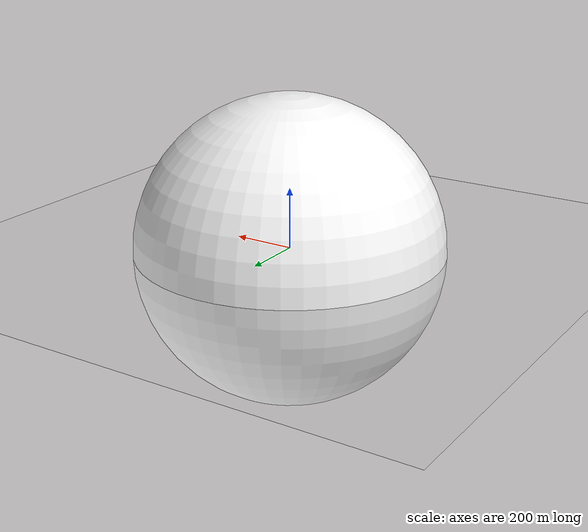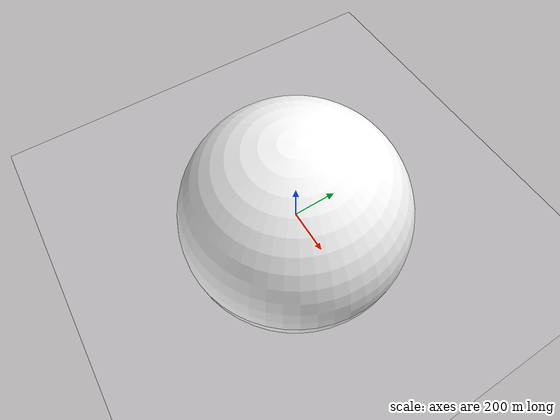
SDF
<?xml version="1.0"?>
<sdf version="1.8">
  <world name="laberinto_world">

    <plugin filename="libignition-gazebo-physics-system.so"
      name="ignition::gazebo::systems::Physics"></plugin>
    <plugin filename="libignition-gazebo-scene-broadcaster-system.so"
      name="ignition::gazebo::systems::SceneBroadcaster"></plugin>
    <plugin filename="libignition-gazebo-user-commands-system.so"
      name="ignition::gazebo::systems::UserCommands"></plugin>
    <plugin filename="libignition-gazebo-sensors-system.so"
      name="ignition::gazebo::systems::Sensors">
      <render_engine>ogre2</render_engine>
    </plugin>
    <!-- IMU system: needed by the JetAuto MPU-6050 sensor (jetauto_sim). Harmless if no IMU. -->
    <plugin filename="libignition-gazebo-imu-system.so"
      name="ignition::gazebo::systems::Imu"></plugin>

    <scene>
      <ambient>0.55 0.55 0.6 1.0</ambient>
      <background>0.85 0.87 0.9 1.0</background>
      <grid>true</grid>
    </scene>

    <gui fullscreen="0">
      <plugin filename="GzScene3D" name="3D View">
        <ignition-gui>
          <title>3D View</title>
          <property type="bool" key="showTitleBar">false</property>
          <property type="string" key="state">docked</property>
        </ignition-gui>
        <engine>ogre2</engine>
        <scene>scene</scene>
        <ambient_light>0.55 0.55 0.6</ambient_light>
        <background_color>0.85 0.87 0.9</background_color>
        <camera_pose>-6 0 5 0 0.5 0</camera_pose>
        <horizontal_fov>0.6912</horizontal_fov>
      </plugin>

      <!-- Plugin para ver el Real Time Factor y Tiempo de Simulación -->
      <plugin filename="WorldStats" name="World stats">
        <ignition-gui>
          <title>World stats</title>
          <property type="bool" key="showTitleBar">false</property>
          <property type="bool" key="resizable">false</property>
          <property type="double" key="height">110</property>
          <property type="double" key="width">290</property>
          <property type="double" key="z">1</property>
          <property type="string" key="state">floating</property>
          <anchors target="3D View">
            <line own="right" target="right"/>
            <line own="bottom" target="bottom"/>
          </anchors>
        </ignition-gui>
        <sim_time>true</sim_time>
        <real_time>true</real_time>
        <real_time_factor>true</real_time_factor>
        <iterations>true</iterations>
      </plugin>

      <!-- Plugin para los botones de Play / Pause / Step -->
      <plugin filename="WorldControl" name="World control">
        <ignition-gui>
          <title>World control</title>
          <property type="bool" key="showTitleBar">false</property>
          <property type="bool" key="resizable">false</property>
          <property type="double" key="height">72</property>
          <property type="double" key="width">121</property>
          <property type="double" key="z">1</property>
          <property type="string" key="state">floating</property>
          <anchors target="3D View">
            <line own="left" target="left"/>
            <line own="bottom" target="bottom"/>
          </anchors>
        </ignition-gui>
        <play_pause>true</play_pause>
        <step>true</step>
        <start_paused>false</start_paused>
      </plugin>
    </gui>

    <physics name="3ms" type="ignored">
      <max_step_size>0.003</max_step_size>
      <real_time_factor>1.0</real_time_factor>
    </physics>

    <light type="directional" name="sun">
      <cast_shadows>true</cast_shadows>
      <pose>0 0 10 0 0 0</pose>
      <diffuse>0.45 0.45 0.45 1</diffuse>
      <specular>0.05 0.05 0.05 1</specular>
      <direction>-0.5 0.1 -0.9</direction>
    </light>

    <light type="directional" name="fill_opposite">
      <cast_shadows>false</cast_shadows>
      <pose>0 0 10 0 0 0</pose>
      <diffuse>0.25 0.25 0.28 1</diffuse>
      <specular>0.0 0.0 0.0 1</specular>
      <direction>0.5 -0.1 -0.7</direction>
    </light>

    <light type="directional" name="fill_side">
      <cast_shadows>false</cast_shadows>
      <pose>0 0 10 0 0 0</pose>
      <diffuse>0.2 0.22 0.25 1</diffuse>
      <specular>0.0 0.0 0.0 1</specular>
      <direction>0.1 0.9 -0.4</direction>
    </light>

    <model name="ground_plane">
      <static>true</static>
      <link name="link">
        <collision name="collision">
          <geometry>
            <plane>
              <normal>0 0 1</normal>
              <size>100 100</size>
            </plane>
          </geometry>
        </collision>
        <visual name="visual">
          <geometry>
            <plane>
              <normal>0 0 1</normal>
              <size>100 100</size>
            </plane>
          </geometry>
          <material>
            <ambient>0.8 0.8 0.8 1</ambient>
            <diffuse>0.8 0.8 0.8 1</diffuse>
          </material>
        </visual>
      </link>
    </model>

    <!-- dronCamara desactivado: colisionaba con uav/camera/image del tello_con_espejo -->

    <include>
      <name>aruco_2</name>
      <uri>file://marcador_aruco/marcador_aruco2.sdf</uri>
      <pose>0.0 -1.4 0.06 0 0 -1.5708</pose>
    </include>

    <include>
      <name>cubo_meta</name>
      <uri>file://cubo_aruco</uri>
      <pose>1.3 1.3 0.06 0 0 0</pose>
    </include>

    <include>
      <uri>model://skydome</uri>
      <pose>0 0 0 0 0 0</pose>
    </include>

    <include>
      <uri>model://laberinto_real</uri>
      <pose>-2.294 2.294 0 1.5708 0 0</pose>
    </include>

  </world>
</sdf>

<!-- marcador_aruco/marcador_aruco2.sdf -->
<sdf version="1.8">
  <model name="marcador_aruco">
    <static>true</static>
    <link name="link">
      <visual name="visual">
        <geometry>
          <plane>
            <normal>0 0 1</normal>
            <size>0.18 0.18</size>
          </plane>
        </geometry>
        <material>
          <diffuse>1 1 1 1</diffuse>
          <specular>0.1 0.1 0.1 1</specular>
          <pbr>
            <metal>
              <albedo_map>materials/textures/aruco2.png</albedo_map>
            </metal>
          </pbr>
        </material>
      </visual>
      <collision name="collision">
        <geometry>
          <plane>
            <normal>0 0 1</normal>
            <size>0.18 0.18</size>
          </plane>
        </geometry>
      </collision>
    </link>
  </model>
</sdf>

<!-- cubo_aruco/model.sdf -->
<sdf version="1.8">
  <model name="cubo_aruco">
    <static>true</static>
    <link name="link">
      <pose>0 0 0.1 0 0 0</pose>

      <!-- Cara superior (+Z) -->
      <visual name="face_top">
        <pose>0 0 0.075 0 0 0</pose>
        <geometry><box><size>0.15 0.15 0.001</size></box></geometry>
        <material>
          <diffuse>1 1 1 1</diffuse>
          <pbr><metal><albedo_map>../marcador_aruco/materials/textures/aruco0.png</albedo_map></metal></pbr>
        </material>
      </visual>

      <!-- Cara inferior (-Z) -->
      <visual name="face_bottom">
        <pose>0 0 -0.075 0 0 0</pose>
        <geometry><box><size>0.15 0.15 0.001</size></box></geometry>
        <material>
          <diffuse>1 1 1 1</diffuse>
          <pbr><metal><albedo_map>../marcador_aruco/materials/textures/aruco1.png</albedo_map></metal></pbr>
        </material>
      </visual>

      <!-- Cara frontal (+Y) -->
      <visual name="face_front">
        <pose>0 0.075 0 -1.5708 0 0</pose>
        <geometry><box><size>0.15 0.15 0.001</size></box></geometry>
        <material>
          <diffuse>1 1 1 1</diffuse>
          <pbr><metal><albedo_map>../marcador_aruco/materials/textures/aruco1.png</albedo_map></metal></pbr>
        </material>
      </visual>

      <!-- Cara trasera (-Y) -->
      <visual name="face_back">
        <pose>0 -0.075 0 1.5708 0 0</pose>
        <geometry><box><size>0.15 0.15 0.001</size></box></geometry>
        <material>
          <diffuse>1 1 1 1</diffuse>
          <pbr><metal><albedo_map>../marcador_aruco/materials/textures/aruco1.png</albedo_map></metal></pbr>
        </material>
      </visual>

      <!-- Cara derecha (+X) -->
      <visual name="face_right">
        <pose>0.075 0 0 0 1.5708 0</pose>
        <geometry><box><size>0.15 0.15 0.001</size></box></geometry>
        <material>
          <diffuse>1 1 1 1</diffuse>
          <pbr><metal><albedo_map>../marcador_aruco/materials/textures/aruco1.png</albedo_map></metal></pbr>
        </material>
      </visual>

      <!-- Cara izquierda (-X) -->
      <visual name="face_left">
        <pose>-0.075 0 0 0 -1.5708 0</pose>
        <geometry><box><size>0.15 0.15 0.001</size></box></geometry>
        <material>
          <diffuse>1 1 1 1</diffuse>
          <pbr><metal><albedo_map>../marcador_aruco/materials/textures/aruco1.png</albedo_map></metal></pbr>
        </material>
      </visual>

      <collision name="collision">
        <geometry>
          <box>
            <size>0.15 0.15 0.15</size>
          </box>
        </geometry>
      </collision>
    </link>
  </model>
</sdf>

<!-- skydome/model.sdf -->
<sdf version="1.6">
  <model name="skydome">
    <static>true</static>
    <link name="link">
      <visual name="visual">
        <cast_shadows>false</cast_shadows>
        <geometry>
          <mesh>
            <uri>model://skydome/meshes/skydome.obj</uri>
          </mesh>
        </geometry>
        <material>
          <ambient>1 1 1 1</ambient>
          <diffuse>1 1 1 1</diffuse>
          <specular>0 0 0 1</specular>
          <pbr>
            <metal>
              <albedo_map>model://skydome/meshes/hangar_equirect.png</albedo_map>
              <emissive_map>model://skydome/meshes/hangar_equirect.png</emissive_map>
              <metalness>0.0</metalness>
              <roughness>1.0</roughness>
            </metal>
          </pbr>
        </material>
      </visual>
    </link>
  </model>
</sdf>

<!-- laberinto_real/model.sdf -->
<sdf version="1.6">
  <model name="laberinto_real">
    <static>true</static>

    <pose>0 0 0 0 0 1.5708</pose>

    <link name="link">

      <visual name="visual_piso">
        <geometry>
          <mesh>
            <uri>model://laberinto_real/meshes/piso.stl</uri>
            <scale>0.001 0.001 0.001</scale>
          </mesh>
        </geometry>
        <material>
          <ambient>0.06 0.06 0.07 1</ambient>
          <diffuse>0.08 0.08 0.09 1</diffuse>
          <specular>0.02 0.02 0.02 1</specular>
          <pbr>
            <metal>
              <metalness>0.0</metalness>
              <roughness>0.95</roughness>
            </metal>
          </pbr>
        </material>
      </visual>

      <collision name="colision_piso">
        <geometry>
          <mesh>
            <uri>model://laberinto_real/meshes/piso.stl</uri>
            <scale>0.001 0.001 0.001</scale>
          </mesh>
        </geometry>
      </collision>

      <visual name="visual_paredes">
        <geometry>
          <mesh>
            <uri>model://laberinto_real/meshes/paredes.stl</uri>
            <scale>0.001 0.001 0.001</scale>
          </mesh>
        </geometry>
        <material>
          <ambient>0.45 0.30 0.16 1</ambient>
          <diffuse>0.55 0.38 0.20 1</diffuse>
          <specular>0.05 0.04 0.03 1</specular>
          <pbr>
            <metal>
              <metalness>0.0</metalness>
              <roughness>0.92</roughness>
            </metal>
          </pbr>
        </material>
      </visual>

      <collision name="colision_paredes">
        <geometry>
          <mesh>
            <uri>model://laberinto_real/meshes/paredes.stl</uri>
            <scale>0.001 0.001 0.001</scale>
          </mesh>
        </geometry>
      </collision>

      <visual name="visual_lineas">
        <pose>0 -0.02027 0 0 0 0</pose>
        <geometry>
          <mesh>
            <uri>model://laberinto_real/meshes/lineas.stl</uri>
            <scale>0.001 0.001 0.001</scale>
          </mesh>
        </geometry>
        <material>
          <ambient>0.02 0.20 0.55 1</ambient>
          <diffuse>0.03 0.28 0.70 1</diffuse>
          <specular>0.04 0.04 0.05 1</specular>
          <pbr>
            <metal>
              <metalness>0.0</metalness>
              <roughness>0.88</roughness>
            </metal>
          </pbr>
        </material>
      </visual>

      <visual name="visual_jaula">
        <geometry>
          <mesh>
            <uri>model://laberinto_real/meshes/jaula.stl</uri>
            <scale>0.001 0.001 0.001</scale>
          </mesh>
        </geometry>
        <material>
          <ambient>0.85 0.85 0.85 1</ambient>
          <diffuse>0.85 0.85 0.85 1</diffuse>
        </material>
      </visual>

      <collision name="colision_jaula">
        <geometry>
          <mesh>
            <uri>model://laberinto_real/meshes/jaula.stl</uri>
            <scale>0.001 0.001 0.001</scale>
          </mesh>
        </geometry>
      </collision>

      <visual name="visual_cajasRecientes">
        <geometry>
          <mesh>
            <uri>model://laberinto_real/meshes/cajasRecientes.stl</uri>
            <scale>0.001 0.001 0.001</scale>
          </mesh>
        </geometry>
        <material>
          <ambient>1.0 0.85 0.0 1</ambient>
          <diffuse>1.0 0.85 0.0 1</diffuse>
        </material>
      </visual>

      <collision name="colision_cajasRecientes">
        <geometry>
          <mesh>
            <uri>model://laberinto_real/meshes/cajasRecientes.stl</uri>
            <scale>0.001 0.001 0.001</scale>
          </mesh>
        </geometry>
      </collision>

    </link>
  </model>
</sdf>
